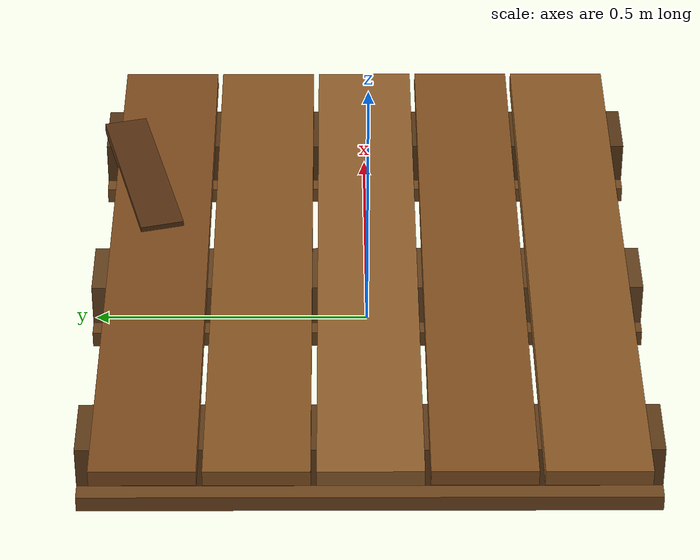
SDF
<?xml version="1.0" ?>
<sdf version="1.7">

  <model name="industrial_pallet">

    <static>true</static>

    <link name="pallet_link">

      <!-- INERTIA -->
      <inertial>
        <mass>35.0</mass>

        <inertia>
          <ixx>2.0</ixx>
          <iyy>2.0</iyy>
          <izz>2.0</izz>
        </inertia>
      </inertial>

      <!-- COLLISION -->
      <collision name="collision">

        <pose>0 0 0.075 0 0 0</pose>

        <geometry>
          <box>
            <size>1.2 1.0 0.15</size>
          </box>
        </geometry>

      </collision>

      <!-- TOP WOOD PLANKS -->

      <visual name="top_plank_1">
        <pose>0 -0.38 0.13 0 0 0</pose>

        <geometry>
          <box>
            <size>1.2 0.18 0.03</size>
          </box>
        </geometry>

        <material>
          <ambient>0.45 0.28 0.12 1</ambient>
          <diffuse>0.55 0.35 0.15 1</diffuse>
        </material>
      </visual>

      <visual name="top_plank_2">
        <pose>0 -0.19 0.13 0 0 0</pose>

        <geometry>
          <box>
            <size>1.2 0.18 0.03</size>
          </box>
        </geometry>

        <material>
          <ambient>0.42 0.25 0.10 1</ambient>
          <diffuse>0.52 0.32 0.13 1</diffuse>
        </material>
      </visual>

      <visual name="top_plank_3">
        <pose>0 0.0 0.13 0 0 0</pose>

        <geometry>
          <box>
            <size>1.2 0.18 0.03</size>
          </box>
        </geometry>

        <material>
          <ambient>0.48 0.30 0.15 1</ambient>
          <diffuse>0.58 0.38 0.18 1</diffuse>
        </material>
      </visual>

      <visual name="top_plank_4">
        <pose>0 0.19 0.13 0 0 0</pose>

        <geometry>
          <box>
            <size>1.2 0.18 0.03</size>
          </box>
        </geometry>

        <material>
          <ambient>0.44 0.27 0.11 1</ambient>
          <diffuse>0.54 0.34 0.14 1</diffuse>
        </material>
      </visual>

      <visual name="top_plank_5">
        <pose>0 0.38 0.13 0 0 0</pose>

        <geometry>
          <box>
            <size>1.2 0.18 0.03</size>
          </box>
        </geometry>

        <material>
          <ambient>0.40 0.24 0.10 1</ambient>
          <diffuse>0.50 0.30 0.12 1</diffuse>
        </material>
      </visual>

      <!-- MIDDLE SUPPORTS -->

      <visual name="middle_support_1">

        <pose>-0.45 0 0.075 0 0 0</pose>

        <geometry>
          <box>
            <size>0.12 1.0 0.08</size>
          </box>
        </geometry>

        <material>
          <ambient>0.30 0.18 0.08 1</ambient>
          <diffuse>0.38 0.24 0.10 1</diffuse>
        </material>

      </visual>

      <visual name="middle_support_2">

        <pose>0 0 0.075 0 0 0</pose>

        <geometry>
          <box>
            <size>0.12 1.0 0.08</size>
          </box>
        </geometry>

        <material>
          <ambient>0.32 0.19 0.09 1</ambient>
          <diffuse>0.40 0.26 0.12 1</diffuse>
        </material>

      </visual>

      <visual name="middle_support_3">

        <pose>0.45 0 0.075 0 0 0</pose>

        <geometry>
          <box>
            <size>0.12 1.0 0.08</size>
          </box>
        </geometry>

        <material>
          <ambient>0.28 0.16 0.07 1</ambient>
          <diffuse>0.35 0.22 0.09 1</diffuse>
        </material>

      </visual>

      <!-- BOTTOM PLANKS -->

      <visual name="bottom_plank_1">

        <pose>-0.45 0 0.02 0 0 0</pose>

        <geometry>
          <box>
            <size>0.18 1.0 0.03</size>
          </box>
        </geometry>

        <material>
          <ambient>0.35 0.22 0.10 1</ambient>
          <diffuse>0.45 0.28 0.12 1</diffuse>
        </material>

      </visual>

      <visual name="bottom_plank_2">

        <pose>0 0 0.02 0 0 0</pose>

        <geometry>
          <box>
            <size>0.18 1.0 0.03</size>
          </box>
        </geometry>

        <material>
          <ambient>0.33 0.20 0.09 1</ambient>
          <diffuse>0.43 0.27 0.11 1</diffuse>
        </material>

      </visual>

      <visual name="bottom_plank_3">

        <pose>0.45 0 0.02 0 0 0</pose>

        <geometry>
          <box>
            <size>0.18 1.0 0.03</size>
          </box>
        </geometry>

        <material>
          <ambient>0.36 0.23 0.11 1</ambient>
          <diffuse>0.46 0.29 0.13 1</diffuse>
        </material>

      </visual>

      <!-- DAMAGE / BROKEN BOARD -->

      <visual name="broken_piece">

        <pose>0.25 0.42 0.145 0 0 0.25</pose>

        <geometry>
          <box>
            <size>0.35 0.08 0.02</size>
          </box>
        </geometry>

        <material>
          <ambient>0.25 0.15 0.05 1</ambient>
          <diffuse>0.35 0.20 0.08 1</diffuse>
        </material>

      </visual>

    </link>

  </model>

</sdf>
